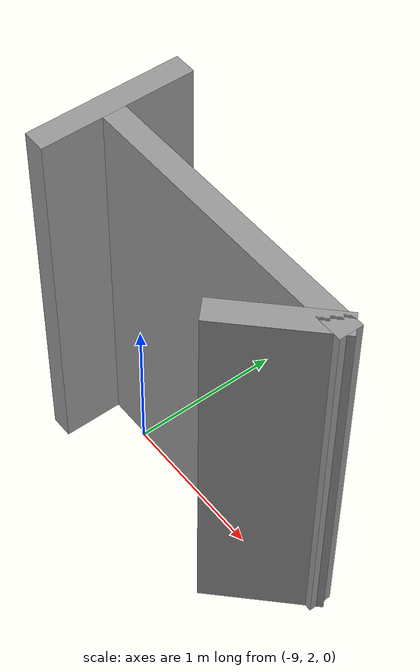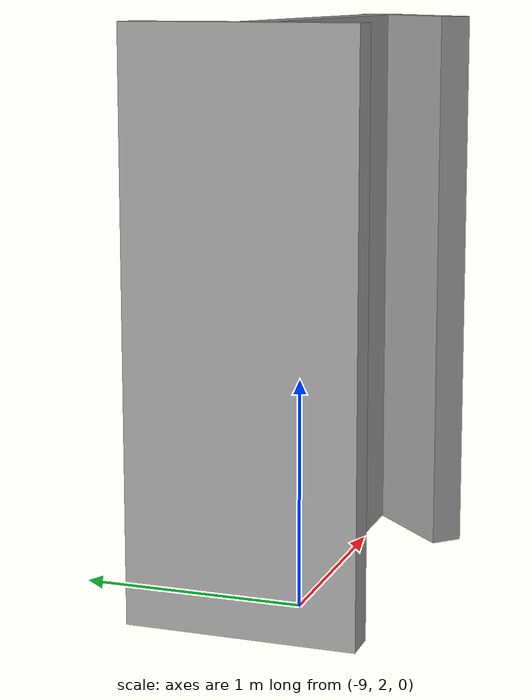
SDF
<?xml version='1.0'?>
<sdf version='1.6'>
  <model name='So1'>
    <pose frame=''>-8.39265 2.08769 0 0 -0 0</pose>
    <link name='Wall_10'>
      <collision name='Wall_10_Collision'>
        <geometry>
          <box>
            <size>2 0.15 2.5</size>
          </box>
        </geometry>
        <pose frame=''>0 0 1.25 0 -0 0</pose>
      </collision>
      <visual name='Wall_10_Visual'>
        <pose frame=''>0 0 1.25 0 -0 0</pose>
        <geometry>
          <box>
            <size>2 0.15 2.5</size>
          </box>
        </geometry>
        <material>
          <script>
            <uri>file://media/materials/scripts/gazebo.material</uri>
            <name>Gazebo/Grey</name>
          </script>
          <ambient>1 1 1 1</ambient>
        </material>
        <meta>
          <layer>0</layer>
        </meta>
      </visual>
      <pose frame=''>0.018772 -0.001036 0 0 -0 0</pose>
    </link>
    <link name='Wall_13'>
      <collision name='Wall_13_Collision'>
        <geometry>
          <box>
            <size>0.75 0.15 2.5</size>
          </box>
        </geometry>
        <pose frame=''>0 0 1.25 0 -0 0</pose>
      </collision>
      <visual name='Wall_13_Visual'>
        <pose frame=''>0 0 1.25 0 -0 0</pose>
        <geometry>
          <box>
            <size>0.75 0.15 2.5</size>
          </box>
        </geometry>
        <material>
          <script>
            <uri>file://media/materials/scripts/gazebo.material</uri>
            <name>Gazebo/Grey</name>
          </script>
          <ambient>1 1 1 1</ambient>
        </material>
        <meta>
          <layer>0</layer>
        </meta>
      </visual>
      <pose frame=''>0.73164 -0.213168 0 0 -0 -2.35619</pose>
    </link>
    <link name='Wall_17'>
      <collision name='Wall_17_Collision'>
        <geometry>
          <box>
            <size>1 0.15 2.5</size>
          </box>
        </geometry>
        <pose frame=''>0 0 1.25 0 -0 0</pose>
      </collision>
      <visual name='Wall_17_Visual'>
        <pose frame=''>0 0 1.25 0 -0 0</pose>
        <geometry>
          <box>
            <size>1 0.15 2.5</size>
          </box>
        </geometry>
        <material>
          <script>
            <uri>file://media/materials/scripts/gazebo.material</uri>
            <name>Gazebo/Grey</name>
          </script>
          <ambient>1 1 1 1</ambient>
        </material>
        <meta>
          <layer>0</layer>
        </meta>
      </visual>
      <pose frame=''>-0.974838 0.031366 0 0 -0 -1.5708</pose>
    </link>
    <static>1</static>
  </model>
</sdf>
